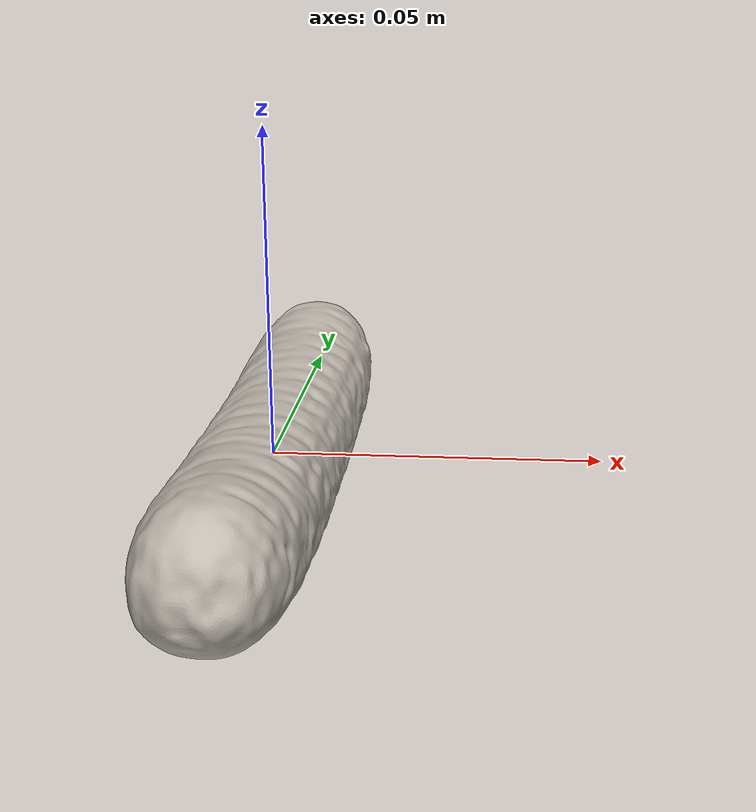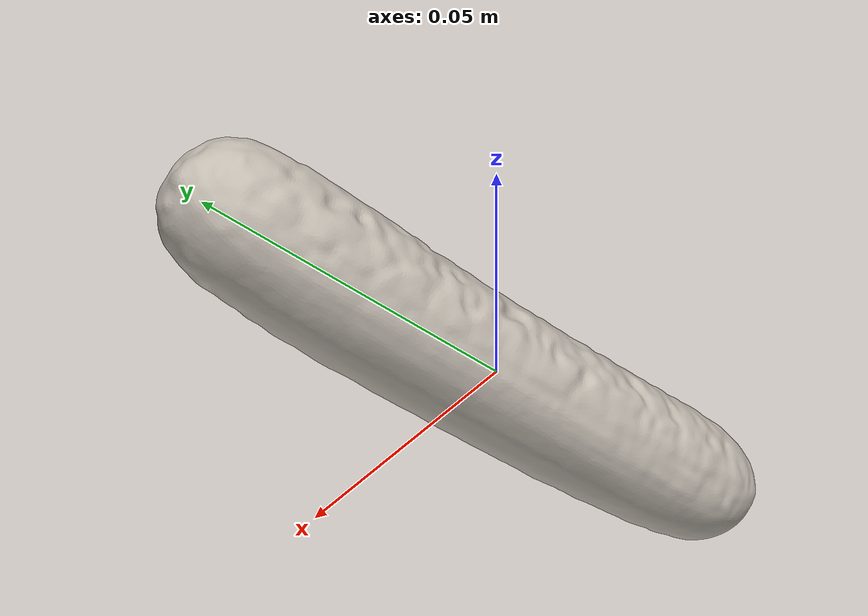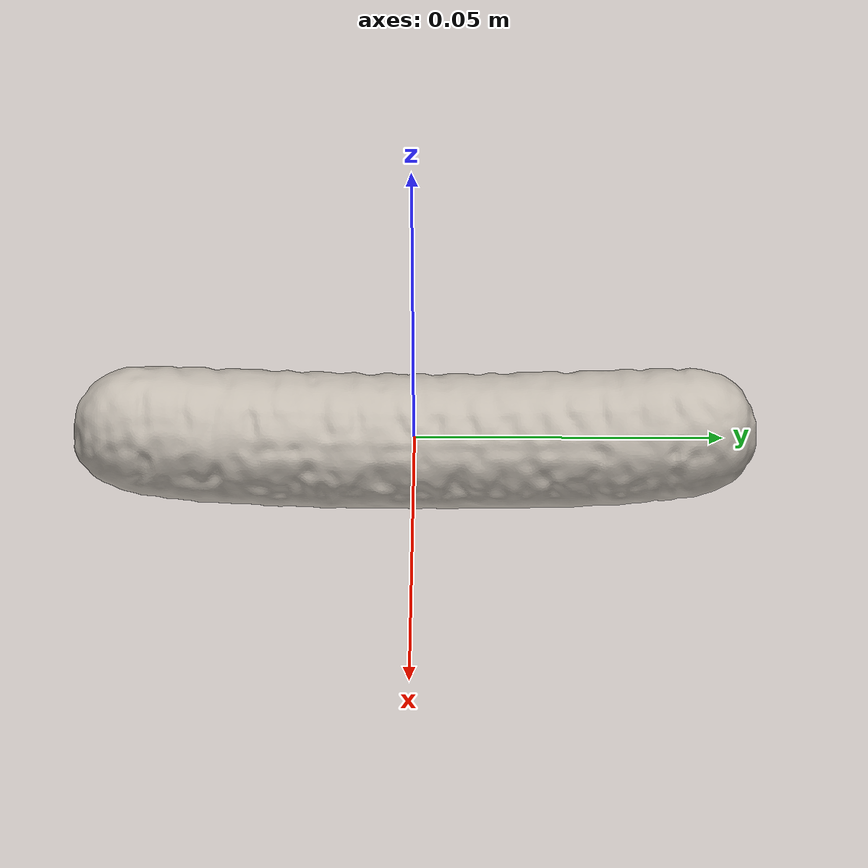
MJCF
<?xml version='1.0' encoding='utf-8'?>
<mujoco model="sausage_1">
  <asset>
    <texture file="ceramic.png" name="tex-sausage_1" type="2d" />
    <material name="sausage_1" reflectance="0.5" texrepeat="1 1" texture="tex-sausage_1" texuniform="false" />
    <mesh file="visual/model_normalized_0.obj" name="model_normalized_0_vis" scale="0.11000000000000001 0.11000000000000001 0.11000000000000001" refquat="1.0 0.0 0.0 0.0" />
    <mesh file="collision/model_normalized_collision_13.obj" name="model_normalized_collision_13._coll" scale="0.11000000000000001 0.11000000000000001 0.11000000000000001" refquat="1.0 0.0 0.0 0.0" />
    <mesh file="collision/model_normalized_collision_15.obj" name="model_normalized_collision_15._coll" scale="0.11000000000000001 0.11000000000000001 0.11000000000000001" refquat="1.0 0.0 0.0 0.0" />
    <mesh file="collision/model_normalized_collision_10.obj" name="model_normalized_collision_10._coll" scale="0.11000000000000001 0.11000000000000001 0.11000000000000001" refquat="1.0 0.0 0.0 0.0" />
    <mesh file="collision/model_normalized_collision_26.obj" name="model_normalized_collision_26._coll" scale="0.11000000000000001 0.11000000000000001 0.11000000000000001" refquat="1.0 0.0 0.0 0.0" />
    <mesh file="collision/model_normalized_collision_25.obj" name="model_normalized_collision_25._coll" scale="0.11000000000000001 0.11000000000000001 0.11000000000000001" refquat="1.0 0.0 0.0 0.0" />
    <mesh file="collision/model_normalized_collision_5.obj" name="model_normalized_collision_5._coll" scale="0.11000000000000001 0.11000000000000001 0.11000000000000001" refquat="1.0 0.0 0.0 0.0" />
    <mesh file="collision/model_normalized_collision_31.obj" name="model_normalized_collision_31._coll" scale="0.11000000000000001 0.11000000000000001 0.11000000000000001" refquat="1.0 0.0 0.0 0.0" />
    <mesh file="collision/model_normalized_collision_3.obj" name="model_normalized_collision_3._coll" scale="0.11000000000000001 0.11000000000000001 0.11000000000000001" refquat="1.0 0.0 0.0 0.0" />
    <mesh file="collision/model_normalized_collision_14.obj" name="model_normalized_collision_14._coll" scale="0.11000000000000001 0.11000000000000001 0.11000000000000001" refquat="1.0 0.0 0.0 0.0" />
    <mesh file="collision/model_normalized_collision_28.obj" name="model_normalized_collision_28._coll" scale="0.11000000000000001 0.11000000000000001 0.11000000000000001" refquat="1.0 0.0 0.0 0.0" />
    <mesh file="collision/model_normalized_collision_11.obj" name="model_normalized_collision_11._coll" scale="0.11000000000000001 0.11000000000000001 0.11000000000000001" refquat="1.0 0.0 0.0 0.0" />
    <mesh file="collision/model_normalized_collision_29.obj" name="model_normalized_collision_29._coll" scale="0.11000000000000001 0.11000000000000001 0.11000000000000001" refquat="1.0 0.0 0.0 0.0" />
    <mesh file="collision/model_normalized_collision_24.obj" name="model_normalized_collision_24._coll" scale="0.11000000000000001 0.11000000000000001 0.11000000000000001" refquat="1.0 0.0 0.0 0.0" />
    <mesh file="collision/model_normalized_collision_1.obj" name="model_normalized_collision_1._coll" scale="0.11000000000000001 0.11000000000000001 0.11000000000000001" refquat="1.0 0.0 0.0 0.0" />
    <mesh file="collision/model_normalized_collision_0.obj" name="model_normalized_collision_0._coll" scale="0.11000000000000001 0.11000000000000001 0.11000000000000001" refquat="1.0 0.0 0.0 0.0" />
    <mesh file="collision/model_normalized_collision_27.obj" name="model_normalized_collision_27._coll" scale="0.11000000000000001 0.11000000000000001 0.11000000000000001" refquat="1.0 0.0 0.0 0.0" />
    <mesh file="collision/model_normalized_collision_9.obj" name="model_normalized_collision_9._coll" scale="0.11000000000000001 0.11000000000000001 0.11000000000000001" refquat="1.0 0.0 0.0 0.0" />
    <mesh file="collision/model_normalized_collision_19.obj" name="model_normalized_collision_19._coll" scale="0.11000000000000001 0.11000000000000001 0.11000000000000001" refquat="1.0 0.0 0.0 0.0" />
    <mesh file="collision/model_normalized_collision_21.obj" name="model_normalized_collision_21._coll" scale="0.11000000000000001 0.11000000000000001 0.11000000000000001" refquat="1.0 0.0 0.0 0.0" />
    <mesh file="collision/model_normalized_collision_30.obj" name="model_normalized_collision_30._coll" scale="0.11000000000000001 0.11000000000000001 0.11000000000000001" refquat="1.0 0.0 0.0 0.0" />
    <mesh file="collision/model_normalized_collision_20.obj" name="model_normalized_collision_20._coll" scale="0.11000000000000001 0.11000000000000001 0.11000000000000001" refquat="1.0 0.0 0.0 0.0" />
    <mesh file="collision/model_normalized_collision_2.obj" name="model_normalized_collision_2._coll" scale="0.11000000000000001 0.11000000000000001 0.11000000000000001" refquat="1.0 0.0 0.0 0.0" />
    <mesh file="collision/model_normalized_collision_7.obj" name="model_normalized_collision_7._coll" scale="0.11000000000000001 0.11000000000000001 0.11000000000000001" refquat="1.0 0.0 0.0 0.0" />
    <mesh file="collision/model_normalized_collision_22.obj" name="model_normalized_collision_22._coll" scale="0.11000000000000001 0.11000000000000001 0.11000000000000001" refquat="1.0 0.0 0.0 0.0" />
    <mesh file="collision/model_normalized_collision_16.obj" name="model_normalized_collision_16._coll" scale="0.11000000000000001 0.11000000000000001 0.11000000000000001" refquat="1.0 0.0 0.0 0.0" />
    <mesh file="collision/model_normalized_collision_8.obj" name="model_normalized_collision_8._coll" scale="0.11000000000000001 0.11000000000000001 0.11000000000000001" refquat="1.0 0.0 0.0 0.0" />
    <mesh file="collision/model_normalized_collision_6.obj" name="model_normalized_collision_6._coll" scale="0.11000000000000001 0.11000000000000001 0.11000000000000001" refquat="1.0 0.0 0.0 0.0" />
    <mesh file="collision/model_normalized_collision_18.obj" name="model_normalized_collision_18._coll" scale="0.11000000000000001 0.11000000000000001 0.11000000000000001" refquat="1.0 0.0 0.0 0.0" />
    <mesh file="collision/model_normalized_collision_17.obj" name="model_normalized_collision_17._coll" scale="0.11000000000000001 0.11000000000000001 0.11000000000000001" refquat="1.0 0.0 0.0 0.0" />
    <mesh file="collision/model_normalized_collision_12.obj" name="model_normalized_collision_12._coll" scale="0.11000000000000001 0.11000000000000001 0.11000000000000001" refquat="1.0 0.0 0.0 0.0" />
    <mesh file="collision/model_normalized_collision_4.obj" name="model_normalized_collision_4._coll" scale="0.11000000000000001 0.11000000000000001 0.11000000000000001" refquat="1.0 0.0 0.0 0.0" />
    <mesh file="collision/model_normalized_collision_23.obj" name="model_normalized_collision_23._coll" scale="0.11000000000000001 0.11000000000000001 0.11000000000000001" refquat="1.0 0.0 0.0 0.0" />
    <texture type="2d" name="8447ad50442b_Sausage__3d_asset_0_texture_kd" file="visual/8447ad50442b_Sausage__3d_asset_0_texture_kd.png" />
    <material name="Material_0" texture="8447ad50442b_Sausage__3d_asset_0_texture_kd" specular="0.5" shininess="0.5" />
  </asset>
  <default>
    <default class="region">
      <geom group="1" conaffinity="0" contype="0" rgba="0 1 0 0" />
    </default>
  </default>
  <worldbody>
    <body>
      <body name="object">
        <geom solimp="0.998 0.998 0.001" solref="0.001 1" density="100" friction="0.95 0.3 0.1" type="mesh" mesh="model_normalized_0_vis" conaffinity="0" contype="0" group="1" material="Material_0" />
        <geom solimp="0.998 0.998 0.001" solref="0.001 1" density="100" friction="0.95 0.3 0.1" type="mesh" mesh="model_normalized_collision_13._coll" group="0" rgba="0.8 0.8 0.8 0.0" />
        <geom solimp="0.998 0.998 0.001" solref="0.001 1" density="100" friction="0.95 0.3 0.1" type="mesh" mesh="model_normalized_collision_15._coll" group="0" rgba="0.8 0.8 0.8 0.0" />
        <geom solimp="0.998 0.998 0.001" solref="0.001 1" density="100" friction="0.95 0.3 0.1" type="mesh" mesh="model_normalized_collision_10._coll" group="0" rgba="0.8 0.8 0.8 0.0" />
        <geom solimp="0.998 0.998 0.001" solref="0.001 1" density="100" friction="0.95 0.3 0.1" type="mesh" mesh="model_normalized_collision_26._coll" group="0" rgba="0.8 0.8 0.8 0.0" />
        <geom solimp="0.998 0.998 0.001" solref="0.001 1" density="100" friction="0.95 0.3 0.1" type="mesh" mesh="model_normalized_collision_25._coll" group="0" rgba="0.8 0.8 0.8 0.0" />
        <geom solimp="0.998 0.998 0.001" solref="0.001 1" density="100" friction="0.95 0.3 0.1" type="mesh" mesh="model_normalized_collision_5._coll" group="0" rgba="0.8 0.8 0.8 0.0" />
        <geom solimp="0.998 0.998 0.001" solref="0.001 1" density="100" friction="0.95 0.3 0.1" type="mesh" mesh="model_normalized_collision_31._coll" group="0" rgba="0.8 0.8 0.8 0.0" />
        <geom solimp="0.998 0.998 0.001" solref="0.001 1" density="100" friction="0.95 0.3 0.1" type="mesh" mesh="model_normalized_collision_3._coll" group="0" rgba="0.8 0.8 0.8 0.0" />
        <geom solimp="0.998 0.998 0.001" solref="0.001 1" density="100" friction="0.95 0.3 0.1" type="mesh" mesh="model_normalized_collision_14._coll" group="0" rgba="0.8 0.8 0.8 0.0" />
        <geom solimp="0.998 0.998 0.001" solref="0.001 1" density="100" friction="0.95 0.3 0.1" type="mesh" mesh="model_normalized_collision_28._coll" group="0" rgba="0.8 0.8 0.8 0.0" />
        <geom solimp="0.998 0.998 0.001" solref="0.001 1" density="100" friction="0.95 0.3 0.1" type="mesh" mesh="model_normalized_collision_11._coll" group="0" rgba="0.8 0.8 0.8 0.0" />
        <geom solimp="0.998 0.998 0.001" solref="0.001 1" density="100" friction="0.95 0.3 0.1" type="mesh" mesh="model_normalized_collision_29._coll" group="0" rgba="0.8 0.8 0.8 0.0" />
        <geom solimp="0.998 0.998 0.001" solref="0.001 1" density="100" friction="0.95 0.3 0.1" type="mesh" mesh="model_normalized_collision_24._coll" group="0" rgba="0.8 0.8 0.8 0.0" />
        <geom solimp="0.998 0.998 0.001" solref="0.001 1" density="100" friction="0.95 0.3 0.1" type="mesh" mesh="model_normalized_collision_1._coll" group="0" rgba="0.8 0.8 0.8 0.0" />
        <geom solimp="0.998 0.998 0.001" solref="0.001 1" density="100" friction="0.95 0.3 0.1" type="mesh" mesh="model_normalized_collision_0._coll" group="0" rgba="0.8 0.8 0.8 0.0" />
        <geom solimp="0.998 0.998 0.001" solref="0.001 1" density="100" friction="0.95 0.3 0.1" type="mesh" mesh="model_normalized_collision_27._coll" group="0" rgba="0.8 0.8 0.8 0.0" />
        <geom solimp="0.998 0.998 0.001" solref="0.001 1" density="100" friction="0.95 0.3 0.1" type="mesh" mesh="model_normalized_collision_9._coll" group="0" rgba="0.8 0.8 0.8 0.0" />
        <geom solimp="0.998 0.998 0.001" solref="0.001 1" density="100" friction="0.95 0.3 0.1" type="mesh" mesh="model_normalized_collision_19._coll" group="0" rgba="0.8 0.8 0.8 0.0" />
        <geom solimp="0.998 0.998 0.001" solref="0.001 1" density="100" friction="0.95 0.3 0.1" type="mesh" mesh="model_normalized_collision_21._coll" group="0" rgba="0.8 0.8 0.8 0.0" />
        <geom solimp="0.998 0.998 0.001" solref="0.001 1" density="100" friction="0.95 0.3 0.1" type="mesh" mesh="model_normalized_collision_30._coll" group="0" rgba="0.8 0.8 0.8 0.0" />
        <geom solimp="0.998 0.998 0.001" solref="0.001 1" density="100" friction="0.95 0.3 0.1" type="mesh" mesh="model_normalized_collision_20._coll" group="0" rgba="0.8 0.8 0.8 0.0" />
        <geom solimp="0.998 0.998 0.001" solref="0.001 1" density="100" friction="0.95 0.3 0.1" type="mesh" mesh="model_normalized_collision_2._coll" group="0" rgba="0.8 0.8 0.8 0.0" />
        <geom solimp="0.998 0.998 0.001" solref="0.001 1" density="100" friction="0.95 0.3 0.1" type="mesh" mesh="model_normalized_collision_7._coll" group="0" rgba="0.8 0.8 0.8 0.0" />
        <geom solimp="0.998 0.998 0.001" solref="0.001 1" density="100" friction="0.95 0.3 0.1" type="mesh" mesh="model_normalized_collision_22._coll" group="0" rgba="0.8 0.8 0.8 0.0" />
        <geom solimp="0.998 0.998 0.001" solref="0.001 1" density="100" friction="0.95 0.3 0.1" type="mesh" mesh="model_normalized_collision_16._coll" group="0" rgba="0.8 0.8 0.8 0.0" />
        <geom solimp="0.998 0.998 0.001" solref="0.001 1" density="100" friction="0.95 0.3 0.1" type="mesh" mesh="model_normalized_collision_8._coll" group="0" rgba="0.8 0.8 0.8 0.0" />
        <geom solimp="0.998 0.998 0.001" solref="0.001 1" density="100" friction="0.95 0.3 0.1" type="mesh" mesh="model_normalized_collision_6._coll" group="0" rgba="0.8 0.8 0.8 0.0" />
        <geom solimp="0.998 0.998 0.001" solref="0.001 1" density="100" friction="0.95 0.3 0.1" type="mesh" mesh="model_normalized_collision_18._coll" group="0" rgba="0.8 0.8 0.8 0.0" />
        <geom solimp="0.998 0.998 0.001" solref="0.001 1" density="100" friction="0.95 0.3 0.1" type="mesh" mesh="model_normalized_collision_17._coll" group="0" rgba="0.8 0.8 0.8 0.0" />
        <geom solimp="0.998 0.998 0.001" solref="0.001 1" density="100" friction="0.95 0.3 0.1" type="mesh" mesh="model_normalized_collision_12._coll" group="0" rgba="0.8 0.8 0.8 0.0" />
        <geom solimp="0.998 0.998 0.001" solref="0.001 1" density="100" friction="0.95 0.3 0.1" type="mesh" mesh="model_normalized_collision_4._coll" group="0" rgba="0.8 0.8 0.8 0.0" />
        <geom solimp="0.998 0.998 0.001" solref="0.001 1" density="100" friction="0.95 0.3 0.1" type="mesh" mesh="model_normalized_collision_23._coll" group="0" rgba="0.8 0.8 0.8 0.0" />
        <geom class="region" name="reg_bbox" type="box" pos="-0.0002486165000000003 -1.0999999994210087e-09 -0.0002411079000000007" size="0.011418050600000002 0.05583333360000002 0.012500000700000001" />
      </body>
    <site rgba="0 0 0 0" size="0.005" pos="0 0 -0.012741109" name="bottom_site" /><site rgba="0 0 0 0" size="0.005" pos="0 0 0.012258893" name="top_site" /><site rgba="0 0 0 0" size="0.005" pos="0.055833335 0.055833335 0" name="horizontal_radius_site" /></body>
  </worldbody>
</mujoco>
